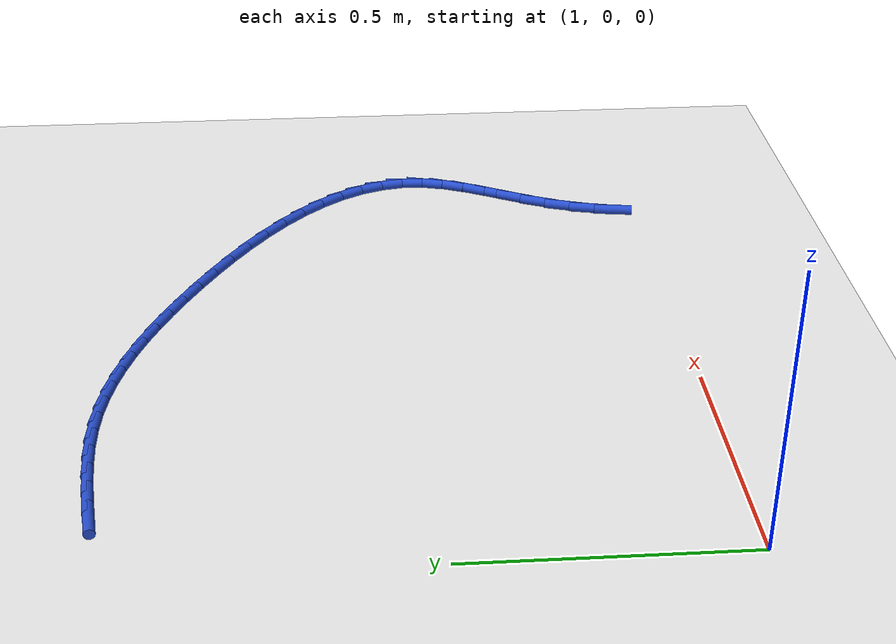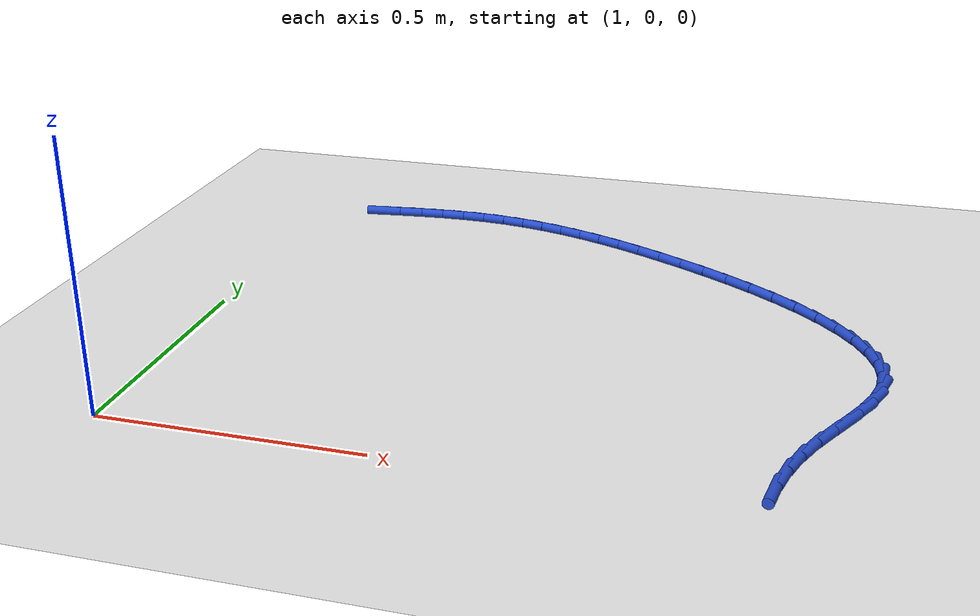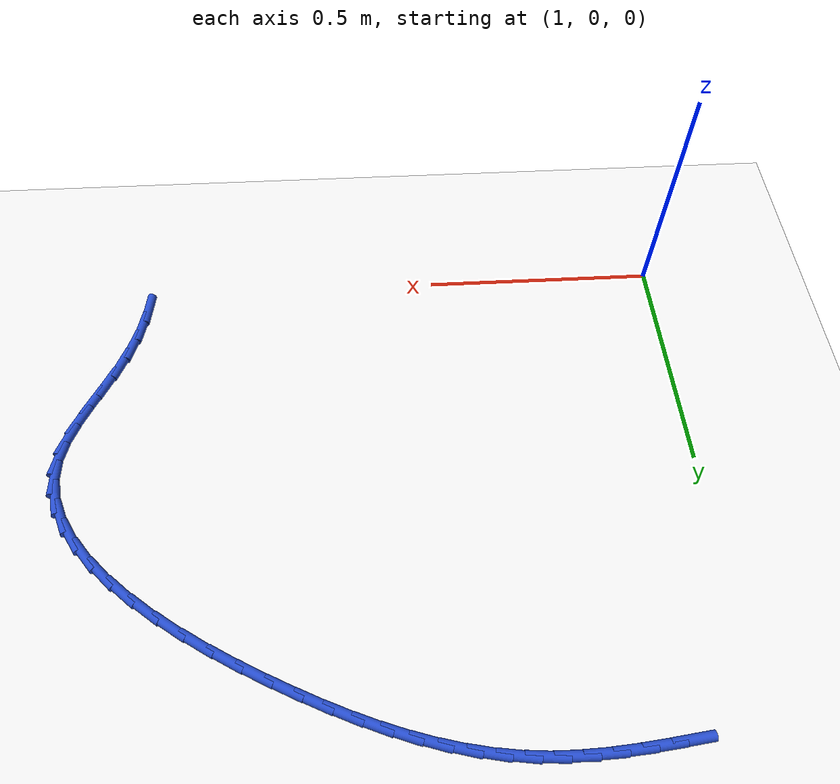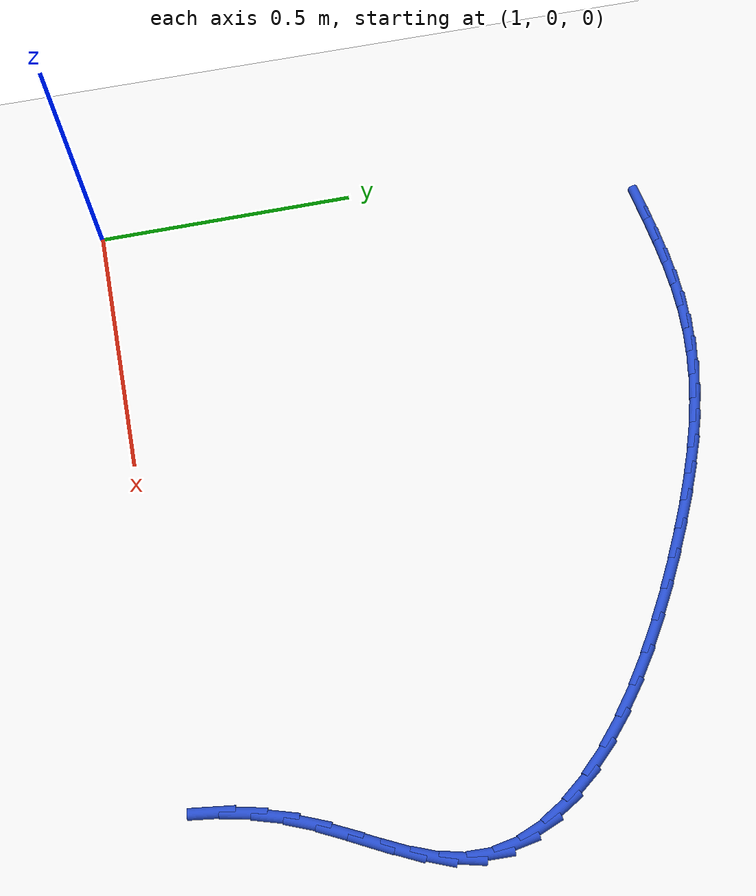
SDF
<sdf version="1.6">
 <world name="default">
  <model name="ground_plane">
   <static>1</static>
   <link name="link">
    <collision name="collision">
     <geometry><plane><normal>0 0 1</normal><size>100 100</size></plane></geometry>
     <surface><friction><ode><mu>100</mu><mu2>50</mu2></ode></friction></surface>
    </collision>
    <visual name="visual">
     <cast_shadows>0</cast_shadows>
     <geometry><plane><normal>0 0 1</normal><size>100 100</size></plane></geometry>
     <material>
      <script><uri>file://media/materials/scripts/gazebo.material</uri><name>Gazebo/WhiteGlow</name></script>
     </material>
    </visual>
   </link>
  </model>
  <model name="line">
   <link name="link_34">
    <pose>1.1404793944594787 1.0683331237277016 0.01 0 1.57 0.11994333644022806</pose>
    <collision name="collision">
     <geometry><cylinder><radius>0.01</radius><length>0.08</length></cylinder></geometry>
    </collision>
    <visual name="visual">
     <material>
      <script><name>Gazebo/Blue</name><uri>file://media/materials/scripts/gazebo.material</uri></script>
     </material>
     <geometry><cylinder><radius>0.01</radius><length>0.08</length></cylinder></geometry>
    </visual>
   </link>
   <link name="link_35">
    <pose>1.1926628924232654 1.0746223754517572 0.01 0 1.57 0.10012830035620568</pose>
    <collision name="collision">
     <geometry><cylinder><radius>0.01</radius><length>0.08</length></cylinder></geometry>
    </collision>
    <visual name="visual">
     <material>
      <script><name>Gazebo/Blue</name><uri>file://media/materials/scripts/gazebo.material</uri></script>
     </material>
     <geometry><cylinder><radius>0.01</radius><length>0.08</length></cylinder></geometry>
    </visual>
   </link>
   <link name="link_36">
    <pose>1.2442548170037773 1.0798055202716272 0.01 0 1.57 0.06952186385192642</pose>
    <collision name="collision">
     <geometry><cylinder><radius>0.01</radius><length>0.08</length></cylinder></geometry>
    </collision>
    <visual name="visual">
     <material>
      <script><name>Gazebo/Blue</name><uri>file://media/materials/scripts/gazebo.material</uri></script>
     </material>
     <geometry><cylinder><radius>0.01</radius><length>0.08</length></cylinder></geometry>
    </visual>
   </link>
   <link name="link_37">
    <pose>1.2952716926318477 1.0833580338404858 0.01 0 1.57 0.02768621813346353</pose>
    <collision name="collision">
     <geometry><cylinder><radius>0.01</radius><length>0.08</length></cylinder></geometry>
    </collision>
    <visual name="visual">
     <material>
      <script><name>Gazebo/Blue</name><uri>file://media/materials/scripts/gazebo.material</uri></script>
     </material>
     <geometry><cylinder><radius>0.01</radius><length>0.08</length></cylinder></geometry>
    </visual>
   </link>
   <link name="link_38">
    <pose>1.3457300437383077 1.084755391811507 0.01 0 1.57 -0.025683768372066793</pose>
    <collision name="collision">
     <geometry><cylinder><radius>0.01</radius><length>0.08</length></cylinder></geometry>
    </collision>
    <visual name="visual">
     <material>
      <script><name>Gazebo/Blue</name><uri>file://media/materials/scripts/gazebo.material</uri></script>
     </material>
     <geometry><cylinder><radius>0.01</radius><length>0.08</length></cylinder></geometry>
    </visual>
   </link>
   <link name="link_39">
    <pose>1.3956463947539903 1.083473069837864 0.01 0 1.57 -0.08882800558701162</pose>
    <collision name="collision">
     <geometry><cylinder><radius>0.01</radius><length>0.08</length></cylinder></geometry>
    </collision>
    <visual name="visual">
     <material>
      <script><name>Gazebo/Blue</name><uri>file://media/materials/scripts/gazebo.material</uri></script>
     </material>
     <geometry><cylinder><radius>0.01</radius><length>0.08</length></cylinder></geometry>
    </visual>
   </link>
   <link name="link_40">
    <pose>1.4450603351671718 1.0790721469339877 0.01 0 1.57 -0.15240149437180758</pose>
    <collision name="collision">
     <geometry><cylinder><radius>0.01</radius><length>0.08</length></cylinder></geometry>
    </collision>
    <visual name="visual">
     <material>
      <script><name>Gazebo/Blue</name><uri>file://media/materials/scripts/gazebo.material</uri></script>
     </material>
     <geometry><cylinder><radius>0.01</radius><length>0.08</length></cylinder></geometry>
    </visual>
   </link>
   <link name="link_41">
    <pose>1.4941252770053866 1.0715361416408502 0.01 0 1.57 -0.21261719389894854</pose>
    <collision name="collision">
     <geometry><cylinder><radius>0.01</radius><length>0.08</length></cylinder></geometry>
    </collision>
    <visual name="visual">
     <material>
      <script><name>Gazebo/Blue</name><uri>file://media/materials/scripts/gazebo.material</uri></script>
     </material>
     <geometry><cylinder><radius>0.01</radius><length>0.08</length></cylinder></geometry>
    </visual>
   </link>
   <link name="link_42">
    <pose>1.5430296819341953 1.0609786552808371 0.01 0 1.57 -0.2685359937160583</pose>
    <collision name="collision">
     <geometry><cylinder><radius>0.01</radius><length>0.08</length></cylinder></geometry>
    </collision>
    <visual name="visual">
     <material>
      <script><name>Gazebo/Blue</name><uri>file://media/materials/scripts/gazebo.material</uri></script>
     </material>
     <geometry><cylinder><radius>0.01</radius><length>0.08</length></cylinder></geometry>
    </visual>
   </link>
   <link name="link_43">
    <pose>1.5919620213701002 1.0475133253658537 0.01 0 1.57 -0.3194895659780439</pose>
    <collision name="collision">
     <geometry><cylinder><radius>0.01</radius><length>0.08</length></cylinder></geometry>
    </collision>
    <visual name="visual">
     <material>
      <script><name>Gazebo/Blue</name><uri>file://media/materials/scripts/gazebo.material</uri></script>
     </material>
     <geometry><cylinder><radius>0.01</radius><length>0.08</length></cylinder></geometry>
    </visual>
   </link>
   <link name="link_44">
    <pose>1.6411107667296034 1.0312537894078044 0.01 0 1.57 -0.3650805087860899</pose>
    <collision name="collision">
     <geometry><cylinder><radius>0.01</radius><length>0.08</length></cylinder></geometry>
    </collision>
    <visual name="visual">
     <material>
      <script><name>Gazebo/Blue</name><uri>file://media/materials/scripts/gazebo.material</uri></script>
     </material>
     <geometry><cylinder><radius>0.01</radius><length>0.08</length></cylinder></geometry>
    </visual>
   </link>
   <link name="link_45">
    <pose>1.6906643894292066 1.0123136849185939 0.01 0 1.57 -0.40515248707323426</pose>
    <collision name="collision">
     <geometry><cylinder><radius>0.01</radius><length>0.08</length></cylinder></geometry>
    </collision>
    <visual name="visual">
     <material>
      <script><name>Gazebo/Blue</name><uri>file://media/materials/scripts/gazebo.material</uri></script>
     </material>
     <geometry><cylinder><radius>0.01</radius><length>0.08</length></cylinder></geometry>
    </visual>
   </link>
   <link name="link_46">
    <pose>1.7408113608854126 0.9908066494101267 0.01 0 1.57 -0.43974353550637707</pose>
    <collision name="collision">
     <geometry><cylinder><radius>0.01</radius><length>0.08</length></cylinder></geometry>
    </collision>
    <visual name="visual">
     <material>
      <script><name>Gazebo/Blue</name><uri>file://media/materials/scripts/gazebo.material</uri></script>
     </material>
     <geometry><cylinder><radius>0.01</radius><length>0.08</length></cylinder></geometry>
    </visual>
   </link>
   <link name="link_47">
    <pose>1.7917401525147227 0.966846320394308 0.01 0 1.57 -0.4690349263080847</pose>
    <collision name="collision">
     <geometry><cylinder><radius>0.01</radius><length>0.08</length></cylinder></geometry>
    </collision>
    <visual name="visual">
     <material>
      <script><name>Gazebo/Blue</name><uri>file://media/materials/scripts/gazebo.material</uri></script>
     </material>
     <geometry><cylinder><radius>0.01</radius><length>0.08</length></cylinder></geometry>
    </visual>
   </link>
   <link name="link_48">
    <pose>1.8436392357336393 0.9405463353830416 0.01 0 1.57 -0.4940879928433445</pose>
    <collision name="collision">
     <geometry><cylinder><radius>0.01</radius><length>0.08</length></cylinder></geometry>
    </collision>
    <visual name="visual">
     <material>
      <script><name>Gazebo/Blue</name><uri>file://media/materials/scripts/gazebo.material</uri></script>
     </material>
     <geometry><cylinder><radius>0.01</radius><length>0.08</length></cylinder></geometry>
    </visual>
   </link>
   <link name="link_49">
    <pose>1.8965959243383745 0.9120211785481052 0.01 0 1.57 -0.520793197811523</pose>
    <collision name="collision">
     <geometry><cylinder><radius>0.01</radius><length>0.08</length></cylinder></geometry>
    </collision>
    <visual name="visual">
     <material>
      <script><name>Gazebo/Blue</name><uri>file://media/materials/scripts/gazebo.material</uri></script>
     </material>
     <geometry><cylinder><radius>0.01</radius><length>0.08</length></cylinder></geometry>
    </visual>
   </link>
   <link name="link_50">
    <pose>1.9499939826631563 0.881391222565731 0.01 0 1.57 -0.5522450673170698</pose>
    <collision name="collision">
     <geometry><cylinder><radius>0.01</radius><length>0.08</length></cylinder></geometry>
    </collision>
    <visual name="visual">
     <material>
      <script><name>Gazebo/Blue</name><uri>file://media/materials/scripts/gazebo.material</uri></script>
     </material>
     <geometry><cylinder><radius>0.01</radius><length>0.08</length></cylinder></geometry>
    </visual>
   </link>
   <link name="link_51">
    <pose>2.002918296914024 0.8487793416351925 0.01 0 1.57 -0.5895416079618973</pose>
    <collision name="collision">
     <geometry><cylinder><radius>0.01</radius><length>0.08</length></cylinder></geometry>
    </collision>
    <visual name="visual">
     <material>
      <script><name>Gazebo/Blue</name><uri>file://media/materials/scripts/gazebo.material</uri></script>
     </material>
     <geometry><cylinder><radius>0.01</radius><length>0.08</length></cylinder></geometry>
    </visual>
   </link>
   <link name="link_52">
    <pose>2.054452662274408 0.8143084190873051 0.01 0 1.57 -0.6341527954027874</pose>
    <collision name="collision">
     <geometry><cylinder><radius>0.01</radius><length>0.08</length></cylinder></geometry>
    </collision>
    <visual name="visual">
     <material>
      <script><name>Gazebo/Blue</name><uri>file://media/materials/scripts/gazebo.material</uri></script>
     </material>
     <geometry><cylinder><radius>0.01</radius><length>0.08</length></cylinder></geometry>
    </visual>
   </link>
   <link name="link_53">
    <pose>2.1036808739277366 0.7781013382528841 0.01 0 1.57 -0.6880583402300781</pose>
    <collision name="collision">
     <geometry><cylinder><radius>0.01</radius><length>0.08</length></cylinder></geometry>
    </collision>
    <visual name="visual">
     <material>
      <script><name>Gazebo/Blue</name><uri>file://media/materials/scripts/gazebo.material</uri></script>
     </material>
     <geometry><cylinder><radius>0.01</radius><length>0.08</length></cylinder></geometry>
    </visual>
   </link>
   <link name="link_54">
    <pose>2.149686727057439 0.7402809824627444 0.01 0 1.57 -0.7539155387511322</pose>
    <collision name="collision">
     <geometry><cylinder><radius>0.01</radius><length>0.08</length></cylinder></geometry>
    </collision>
    <visual name="visual">
     <material>
      <script><name>Gazebo/Blue</name><uri>file://media/materials/scripts/gazebo.material</uri></script>
     </material>
     <geometry><cylinder><radius>0.01</radius><length>0.08</length></cylinder></geometry>
    </visual>
   </link>
   <link name="link_55">
    <pose>2.1915540168469447 0.7009702350477014 0.01 0 1.57 -0.8352432181044779</pose>
    <collision name="collision">
     <geometry><cylinder><radius>0.01</radius><length>0.08</length></cylinder></geometry>
    </collision>
    <visual name="visual">
     <material>
      <script><name>Gazebo/Blue</name><uri>file://media/materials/scripts/gazebo.material</uri></script>
     </material>
     <geometry><cylinder><radius>0.01</radius><length>0.08</length></cylinder></geometry>
    </visual>
   </link>
   <link name="link_56">
    <pose>2.228366538479681 0.6602919793385709 0.01 0 1.57 -0.9365274618492212</pose>
    <collision name="collision">
     <geometry><cylinder><radius>0.01</radius><length>0.08</length></cylinder></geometry>
    </collision>
    <visual name="visual">
     <material>
      <script><name>Gazebo/Blue</name><uri>file://media/materials/scripts/gazebo.material</uri></script>
     </material>
     <geometry><cylinder><radius>0.01</radius><length>0.08</length></cylinder></geometry>
    </visual>
   </link>
   <link name="link_57">
    <pose>2.25920808713908 0.6183690986661675 0.01 0 1.57 -1.062975729726447</pose>
    <collision name="collision">
     <geometry><cylinder><radius>0.01</radius><length>0.08</length></cylinder></geometry>
    </collision>
    <visual name="visual">
     <material>
      <script><name>Gazebo/Blue</name><uri>file://media/materials/scripts/gazebo.material</uri></script>
     </material>
     <geometry><cylinder><radius>0.01</radius><length>0.08</length></cylinder></geometry>
    </visual>
   </link>
   <link name="link_58">
    <pose>2.2831624580085683 0.5753244763613071 0.01 0 1.57 -1.2193172683430173</pose>
    <collision name="collision">
     <geometry><cylinder><radius>0.01</radius><length>0.08</length></cylinder></geometry>
    </collision>
    <visual name="visual">
     <material>
      <script><name>Gazebo/Blue</name><uri>file://media/materials/scripts/gazebo.material</uri></script>
     </material>
     <geometry><cylinder><radius>0.01</radius><length>0.08</length></cylinder></geometry>
    </visual>
   </link>
   <link name="link_59">
    <pose>2.2993134462715763 0.5312809957548047 0.01 0 1.57 -1.4068430009241806</pose>
    <collision name="collision">
     <geometry><cylinder><radius>0.01</radius><length>0.08</length></cylinder></geometry>
    </collision>
    <visual name="visual">
     <material>
      <script><name>Gazebo/Blue</name><uri>file://media/materials/scripts/gazebo.material</uri></script>
     </material>
     <geometry><cylinder><radius>0.01</radius><length>0.08</length></cylinder></geometry>
    </visual>
   </link>
   <link name="link_60">
    <pose>2.3067448471115313 0.4863615401774759 0.01 0 1.57 1.5225770073862193</pose>
    <collision name="collision">
     <geometry><cylinder><radius>0.01</radius><length>0.08</length></cylinder></geometry>
    </collision>
    <visual name="visual">
     <material>
      <script><name>Gazebo/Blue</name><uri>file://media/materials/scripts/gazebo.material</uri></script>
     </material>
     <geometry><cylinder><radius>0.01</radius><length>0.08</length></cylinder></geometry>
    </visual>
   </link>
   <link name="link_61">
    <pose>2.3045408387234247 0.4406889763943976 0.01 0 1.57 1.3181266325658358</pose>
    <collision name="collision">
     <geometry><cylinder><radius>0.01</radius><length>0.08</length></cylinder></geometry>
    </collision>
    <visual name="visual">
     <material>
      <script><name>Gazebo/Blue</name><uri>file://media/materials/scripts/gazebo.material</uri></script>
     </material>
     <geometry><cylinder><radius>0.01</radius><length>0.08</length></cylinder></geometry>
    </visual>
   </link>
   <link name="link_62">
    <pose>2.292577187796854 0.39435193396003226 0.01 0 1.57 1.1796492211141394</pose>
    <collision name="collision">
     <geometry><cylinder><radius>0.01</radius><length>0.08</length></cylinder></geometry>
    </collision>
    <visual name="visual">
     <material>
      <script><name>Gazebo/Blue</name><uri>file://media/materials/scripts/gazebo.material</uri></script>
     </material>
     <geometry><cylinder><radius>0.01</radius><length>0.08</length></cylinder></geometry>
    </visual>
   </link>
   <link name="link_63">
    <pose>2.2731866521032957 0.34733277443514937 0.01 0 1.57 1.1048114834860978</pose>
    <collision name="collision">
     <geometry><cylinder><radius>0.01</radius><length>0.08</length></cylinder></geometry>
    </collision>
    <visual name="visual">
     <material>
      <script><name>Gazebo/Blue</name><uri>file://media/materials/scripts/gazebo.material</uri></script>
     </material>
     <geometry><cylinder><radius>0.01</radius><length>0.08</length></cylinder></geometry>
    </visual>
   </link>
   <link name="link_64">
    <pose>2.249177279769019 0.2995933024673109 0.01 0 1.57 1.081568553699858</pose>
    <collision name="collision">
     <geometry><cylinder><radius>0.01</radius><length>0.08</length></cylinder></geometry>
    </collision>
    <visual name="visual">
     <material>
      <script><name>Gazebo/Blue</name><uri>file://media/materials/scripts/gazebo.material</uri></script>
     </material>
     <geometry><cylinder><radius>0.01</radius><length>0.08</length></cylinder></geometry>
    </visual>
   </link>
   <link name="link_65">
    <pose>2.223357118920297 0.2510953227040785 0.01 0 1.57 1.104303630966705</pose>
    <collision name="collision">
     <geometry><cylinder><radius>0.01</radius><length>0.08</length></cylinder></geometry>
    </collision>
    <visual name="visual">
     <material>
      <script><name>Gazebo/Blue</name><uri>file://media/materials/scripts/gazebo.material</uri></script>
     </material>
     <geometry><cylinder><radius>0.01</radius><length>0.08</length></cylinder></geometry>
    </visual>
   </link>
   <link name="link_66">
    <pose>2.1985342176833997 0.20180063979301288 0.01 0 1.57 1.1731220031187062</pose>
    <collision name="collision">
     <geometry><cylinder><radius>0.01</radius><length>0.08</length></cylinder></geometry>
    </collision>
    <visual name="visual">
     <material>
      <script><name>Gazebo/Blue</name><uri>file://media/materials/scripts/gazebo.material</uri></script>
     </material>
     <geometry><cylinder><radius>0.01</radius><length>0.08</length></cylinder></geometry>
    </visual>
   </link>
   <link name="link_67">
    <pose>2.177477769069307 0.15167274376294562 0.01 0 1.57 1.2671250671486205</pose>
    <collision name="collision">
     <geometry><cylinder><radius>0.01</radius><length>0.08</length></cylinder></geometry>
    </collision>
    <visual name="visual">
     <material>
      <script><name>Gazebo/Blue</name><uri>file://media/materials/scripts/gazebo.material</uri></script>
     </material>
     <geometry><cylinder><radius>0.01</radius><length>0.08</length></cylinder></geometry>
    </visual>
   </link>
   <link name="link_68">
    <pose>2.1615165604315734 0.10073760374480074 0.01 0 1.57 1.354086795164533</pose>
    <collision name="collision">
     <geometry><cylinder><radius>0.01</radius><length>0.08</length></cylinder></geometry>
    </collision>
    <visual name="visual">
     <material>
      <script><name>Gazebo/Blue</name><uri>file://media/materials/scripts/gazebo.material</uri></script>
     </material>
     <geometry><cylinder><radius>0.01</radius><length>0.08</length></cylinder></geometry>
    </visual>
   </link>
   <link name="link_69">
    <pose>2.150147807128575 0.04910063522066866 0.01 0 1.57 1.4300926281372786</pose>
    <collision name="collision">
     <geometry><cylinder><radius>0.01</radius><length>0.08</length></cylinder></geometry>
    </collision>
    <visual name="visual">
     <material>
      <script><name>Gazebo/Blue</name><uri>file://media/materials/scripts/gazebo.material</uri></script>
     </material>
     <geometry><cylinder><radius>0.01</radius><length>0.08</length></cylinder></geometry>
    </visual>
   </link>
  </model>
 </world>
</sdf>
